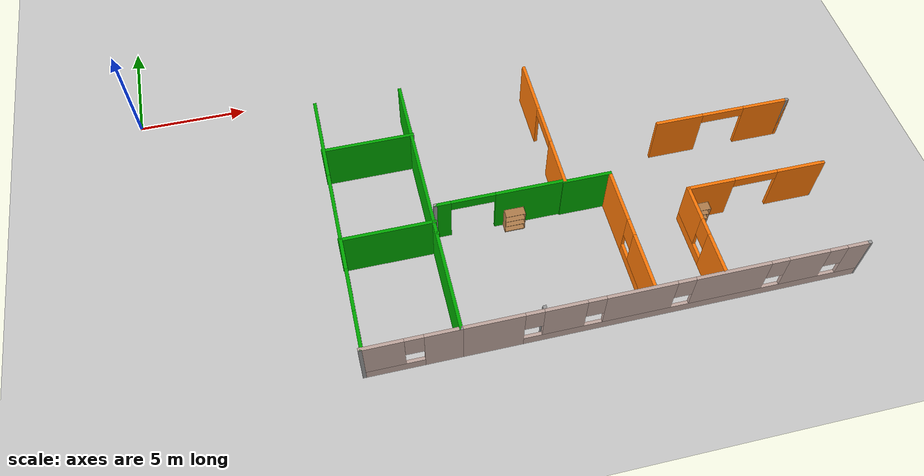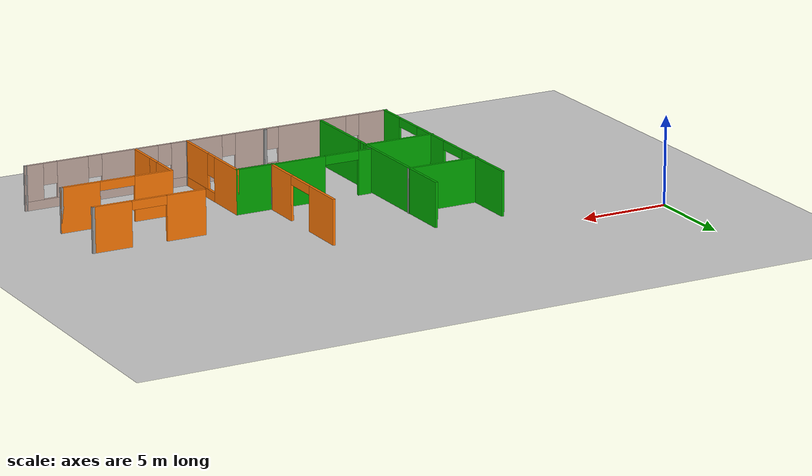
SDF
<sdf version="1.6">
 <world name="default">
  <model name="ground_plane">
   <static>1</static>
   <link name="link">
    <collision name="collision">
     <geometry><plane><normal>0 0 1</normal><size>100 100</size></plane></geometry>
     <surface><friction><ode><mu>100</mu><mu2>50</mu2></ode></friction></surface>
    </collision>
    <visual name="visual">
     <cast_shadows>0</cast_shadows>
     <geometry><plane><normal>0 0 1</normal><size>100 100</size></plane></geometry>
     <material>
      <script><uri>file://media/materials/scripts/gazebo.material</uri><name>Gazebo/Grey</name></script>
     </material>
    </visual>
   </link>
  </model>
  <model name="FloorPlan">
   <pose>0.30947 -3.19534 0 0 -0 0</pose>
   <link name="Wall_101">
    <collision name="Wall_101_Collision">
     <geometry><box><size>13 0.15 2.5</size></box></geometry>
     <pose>0 0 1.25 0 -0 0</pose>
    </collision>
    <visual name="Wall_101_Visual">
     <pose>0 0 1.25 0 -0 0</pose>
     <geometry><box><size>13 0.15 2.5</size></box></geometry>
     <material>
      <script><uri>file://media/materials/scripts/gazebo.material</uri><name>Gazebo/Grey</name></script>
      <ambient>0 0.666667 0 1</ambient>
     </material>
     <meta><layer>0</layer></meta>
    </visual>
    <pose>12.2171 -5.77826 0 0 -0 -1.5708</pose>
   </link>
   <link name="Wall_102">
    <collision name="Wall_102_Collision">
     <geometry><box><size>0.15 0.15 2.5</size></box></geometry>
     <pose>0 0 1.25 0 -0 0</pose>
    </collision>
    <visual name="Wall_102_Visual">
     <pose>0 0 1.25 0 -0 0</pose>
     <geometry><box><size>0.15 0.15 2.5</size></box></geometry>
     <material>
      <script><uri>file://media/materials/scripts/gazebo.material</uri><name>Gazebo/Grey</name></script>
      <ambient>1 1 1 1</ambient>
     </material>
     <meta><layer>0</layer></meta>
    </visual>
    <pose>12.2171 -12.2033 0 0 -0 0</pose>
   </link>
   <link name="Wall_103">
    <pose>10.1671 -12.2033 0 0 -0 3.14159</pose>
    <visual name="Wall_103_Visual_0">
     <pose>-1.32445 0 1.25 0 -0 0</pose>
     <geometry><box><size>1.60109 0.15 2.5</size></box></geometry>
     <material>
      <script><uri>file://media/materials/scripts/gazebo.material</uri><name>Gazebo/Grey</name></script>
      <ambient>0.760784 0.662745 0.627451 1</ambient>
     </material>
     <meta><layer>0</layer></meta>
    </visual>
    <collision name="Wall_103_Collision_0">
     <geometry><box><size>1.60109 0.15 2.5</size></box></geometry>
     <pose>-1.32445 0 1.25 0 -0 0</pose>
    </collision>
    <visual name="Wall_103_Visual_1">
     <pose>0.800545 0 0.25 0 -0 0</pose>
     <geometry><box><size>2.64891 0.15 0.5</size></box></geometry>
     <material>
      <script><uri>file://media/materials/scripts/gazebo.material</uri><name>Gazebo/Grey</name></script>
      <ambient>0.760784 0.662745 0.627451 1</ambient>
     </material>
     <meta><layer>0</layer></meta>
    </visual>
    <collision name="Wall_103_Collision_1">
     <geometry><box><size>2.64891 0.15 0.5</size></box></geometry>
     <pose>0.800545 0 0.25 0 -0 0</pose>
    </collision>
    <visual name="Wall_103_Visual_2">
     <pose>1.20054 0 1.5 0 -0 0</pose>
     <geometry><box><size>1.84891 0.15 2</size></box></geometry>
     <material>
      <script><uri>file://media/materials/scripts/gazebo.material</uri><name>Gazebo/Grey</name></script>
      <ambient>0.760784 0.662745 0.627451 1</ambient>
     </material>
     <meta><layer>0</layer></meta>
    </visual>
    <collision name="Wall_103_Collision_2">
     <geometry><box><size>1.84891 0.15 2</size></box></geometry>
     <pose>1.20054 0 1.5 0 -0 0</pose>
    </collision>
    <visual name="Wall_103_Visual_3">
     <pose>-0.12391 0 1.9 0 -0 0</pose>
     <geometry><box><size>0.8 0.15 1.2</size></box></geometry>
     <material>
      <script><uri>file://media/materials/scripts/gazebo.material</uri><name>Gazebo/Grey</name></script>
      <ambient>0.760784 0.662745 0.627451 1</ambient>
     </material>
     <meta><layer>0</layer></meta>
    </visual>
    <collision name="Wall_103_Collision_3">
     <geometry><box><size>0.8 0.15 1.2</size></box></geometry>
     <pose>-0.12391 0 1.9 0 -0 0</pose>
    </collision>
   </link>
   <link name="Wall_104">
    <collision name="Wall_104_Collision">
     <geometry><box><size>0.16 0.15 2.5</size></box></geometry>
     <pose>0 0 1.25 0 -0 0</pose>
    </collision>
    <visual name="Wall_104_Visual">
     <pose>0 0 1.25 0 -0 0</pose>
     <geometry><box><size>0.16 0.15 2.5</size></box></geometry>
     <material>
      <script><uri>file://media/materials/scripts/gazebo.material</uri><name>Gazebo/Grey</name></script>
      <ambient>1 1 1 1</ambient>
     </material>
     <meta><layer>0</layer></meta>
    </visual>
    <pose>8.12208 -12.2033 0 0 -0 0</pose>
   </link>
   <link name="Wall_110">
    <collision name="Wall_110_Collision">
     <geometry><box><size>0.15 0.15 2.5</size></box></geometry>
     <pose>0 0 1.25 0 -0 0</pose>
    </collision>
    <visual name="Wall_110_Visual">
     <pose>0 0 1.25 0 -0 0</pose>
     <geometry><box><size>0.15 0.15 2.5</size></box></geometry>
     <material>
      <script><uri>file://media/materials/scripts/gazebo.material</uri><name>Gazebo/Grey</name></script>
      <ambient>0 0.666667 0 1</ambient>
     </material>
     <meta><layer>0</layer></meta>
    </visual>
    <pose>12.2509 -7.59265 0 0 -0 0</pose>
   </link>
   <link name="Wall_112">
    <collision name="Wall_112_Collision">
     <geometry><box><size>4.25 0.15 2.5</size></box></geometry>
     <pose>0 0 1.25 0 -0 0</pose>
    </collision>
    <visual name="Wall_112_Visual">
     <pose>0 0 1.25 0 -0 0</pose>
     <geometry><box><size>4.25 0.15 2.5</size></box></geometry>
     <material>
      <script><uri>file://media/materials/scripts/gazebo.material</uri><name>Gazebo/Grey</name></script>
      <ambient>0 0.666667 0 1</ambient>
     </material>
     <meta><layer>0</layer></meta>
    </visual>
    <pose>10.2009 -2.13539 0 0 -0 0</pose>
   </link>
   <link name="Wall_113">
    <collision name="Wall_113_Collision">
     <geometry><box><size>0.16 0.15 2.5</size></box></geometry>
     <pose>0 0 1.25 0 -0 0</pose>
    </collision>
    <visual name="Wall_113_Visual">
     <pose>0 0 1.25 0 -0 0</pose>
     <geometry><box><size>0.16 0.15 2.5</size></box></geometry>
     <material>
      <script><uri>file://media/materials/scripts/gazebo.material</uri><name>Gazebo/Grey</name></script>
      <ambient>1 1 1 1</ambient>
     </material>
     <meta><layer>0</layer></meta>
    </visual>
    <pose>12.2559 -2.13539 0 0 -0 0</pose>
   </link>
   <link name="Wall_115">
    <collision name="Wall_115_Collision">
     <geometry><box><size>4.25 0.15 2.5</size></box></geometry>
     <pose>0 0 1.25 0 -0 0</pose>
    </collision>
    <visual name="Wall_115_Visual">
     <pose>0 0 1.25 0 -0 0</pose>
     <geometry><box><size>4.25 0.15 2.5</size></box></geometry>
     <material>
      <script><uri>file://media/materials/scripts/gazebo.material</uri><name>Gazebo/Grey</name></script>
      <ambient>0 0.666667 0 1</ambient>
     </material>
     <meta><layer>0</layer></meta>
    </visual>
    <pose>10.2009 -7.00412 0 0 -0 0</pose>
   </link>
   <link name="Wall_116">
    <collision name="Wall_116_Collision">
     <geometry><box><size>0.16 0.15 2.5</size></box></geometry>
     <pose>0 0 1.25 0 -0 0</pose>
    </collision>
    <visual name="Wall_116_Visual">
     <pose>0 0 1.25 0 -0 0</pose>
     <geometry><box><size>0.16 0.15 2.5</size></box></geometry>
     <material>
      <script><uri>file://media/materials/scripts/gazebo.material</uri><name>Gazebo/Grey</name></script>
      <ambient>1 1 1 1</ambient>
     </material>
     <meta><layer>0</layer></meta>
    </visual>
    <pose>12.2559 -7.00412 0 0 -0 0</pose>
   </link>
   <link name="Wall_117">
    <collision name="Wall_117_Collision">
     <geometry><box><size>0.16 0.15 2.5</size></box></geometry>
     <pose>0 0 1.25 0 -0 0</pose>
    </collision>
    <visual name="Wall_117_Visual">
     <pose>0 0 1.25 0 -0 0</pose>
     <geometry><box><size>0.16 0.15 2.5</size></box></geometry>
     <material>
      <script><uri>file://media/materials/scripts/gazebo.material</uri><name>Gazebo/Grey</name></script>
      <ambient>0 0.666667 0 1</ambient>
     </material>
     <meta><layer>0</layer></meta>
    </visual>
    <pose>12.2659 -7.00412 0 0 -0 0</pose>
   </link>
   <link name="Wall_135">
    <pose>26.5741 -4.06509 0 0 -0 0</pose>
    <visual name="Wall_135_Visual_0">
     <pose>-2.12495 0 1.25 0 -0 0</pose>
     <geometry><box><size>2.25011 0.15 2.5</size></box></geometry>
     <material>
      <script><uri>file://media/materials/scripts/gazebo.material</uri><name>Gazebo/Grey</name></script>
      <ambient>0.996078 0.47451 0.0196078 1</ambient>
     </material>
     <meta><layer>0</layer></meta>
    </visual>
    <collision name="Wall_135_Collision_0">
     <geometry><box><size>2.25011 0.15 2.5</size></box></geometry>
     <pose>-2.12495 0 1.25 0 -0 0</pose>
    </collision>
    <visual name="Wall_135_Visual_1">
     <pose>2.12505 0 1.25 0 -0 0</pose>
     <geometry><box><size>2.24989 0.15 2.5</size></box></geometry>
     <material>
      <script><uri>file://media/materials/scripts/gazebo.material</uri><name>Gazebo/Grey</name></script>
      <ambient>0.996078 0.47451 0.0196078 1</ambient>
     </material>
     <meta><layer>0</layer></meta>
    </visual>
    <collision name="Wall_135_Collision_1">
     <geometry><box><size>2.24989 0.15 2.5</size></box></geometry>
     <pose>2.12505 0 1.25 0 -0 0</pose>
    </collision>
    <visual name="Wall_135_Visual_2">
     <pose>0.000105 0 2.25 0 -0 0</pose>
     <geometry><box><size>2 0.15 0.5</size></box></geometry>
     <material>
      <script><uri>file://media/materials/scripts/gazebo.material</uri><name>Gazebo/Grey</name></script>
      <ambient>0.996078 0.47451 0.0196078 1</ambient>
     </material>
     <meta><layer>0</layer></meta>
    </visual>
    <collision name="Wall_135_Collision_2">
     <geometry><box><size>2 0.15 0.5</size></box></geometry>
     <pose>0.000105 0 2.25 0 -0 0</pose>
    </collision>
   </link>
   <link name="Wall_136">
    <collision name="Wall_136_Collision">
     <geometry><box><size>0.16 0.15 2.5</size></box></geometry>
     <pose>0 0 1.25 0 -0 0</pose>
    </collision>
    <visual name="Wall_136_Visual">
     <pose>0 0 1.25 0 -0 0</pose>
     <geometry><box><size>0.16 0.15 2.5</size></box></geometry>
     <material>
      <script><uri>file://media/materials/scripts/gazebo.material</uri><name>Gazebo/Grey</name></script>
      <ambient>1 1 1 1</ambient>
     </material>
     <meta><layer>0</layer></meta>
    </visual>
    <pose>29.7541 -4.06509 0 0 -0 0</pose>
   </link>
   <link name="Wall_141">
    <pose>23.4526 -10.0189 0 0 -0 1.5708</pose>
    <visual name="Wall_141_Visual_0">
     <pose>-1.2622 0 1.25 0 -0 0</pose>
     <geometry><box><size>1.97561 0.15 2.5</size></box></geometry>
     <material>
      <script><uri>file://media/materials/scripts/gazebo.material</uri><name>Gazebo/Grey</name></script>
      <ambient>0.996078 0.47451 0.0196078 1</ambient>
     </material>
     <meta><layer>0</layer></meta>
    </visual>
    <collision name="Wall_141_Collision_0">
     <geometry><box><size>1.97561 0.15 2.5</size></box></geometry>
     <pose>-1.2622 0 1.25 0 -0 0</pose>
    </collision>
    <visual name="Wall_141_Visual_1">
     <pose>0.987804 0 0.25 0 -0 0</pose>
     <geometry><box><size>2.52439 0.15 0.5</size></box></geometry>
     <material>
      <script><uri>file://media/materials/scripts/gazebo.material</uri><name>Gazebo/Grey</name></script>
      <ambient>0.996078 0.47451 0.0196078 1</ambient>
     </material>
     <meta><layer>0</layer></meta>
    </visual>
    <collision name="Wall_141_Collision_1">
     <geometry><box><size>2.52439 0.15 0.5</size></box></geometry>
     <pose>0.987804 0 0.25 0 -0 0</pose>
    </collision>
    <visual name="Wall_141_Visual_2">
     <pose>1.3878 0 1.5 0 -0 0</pose>
     <geometry><box><size>1.72439 0.15 2</size></box></geometry>
     <material>
      <script><uri>file://media/materials/scripts/gazebo.material</uri><name>Gazebo/Grey</name></script>
      <ambient>0.996078 0.47451 0.0196078 1</ambient>
     </material>
     <meta><layer>0</layer></meta>
    </visual>
    <collision name="Wall_141_Collision_2">
     <geometry><box><size>1.72439 0.15 2</size></box></geometry>
     <pose>1.3878 0 1.5 0 -0 0</pose>
    </collision>
    <visual name="Wall_141_Visual_3">
     <pose>0.125608 0 1.9 0 -0 0</pose>
     <geometry><box><size>0.8 0.15 1.2</size></box></geometry>
     <material>
      <script><uri>file://media/materials/scripts/gazebo.material</uri><name>Gazebo/Grey</name></script>
      <ambient>0.996078 0.47451 0.0196078 1</ambient>
     </material>
     <meta><layer>0</layer></meta>
    </visual>
    <collision name="Wall_141_Collision_3">
     <geometry><box><size>0.8 0.15 1.2</size></box></geometry>
     <pose>0.125608 0 1.9 0 -0 0</pose>
    </collision>
   </link>
   <link name="Wall_142">
    <pose>26.6276 -7.84386 0 0 -0 0</pose>
    <visual name="Wall_142_Visual_0">
     <pose>-2.13418 0 1.25 0 -0 0</pose>
     <geometry><box><size>2.23165 0.15 2.5</size></box></geometry>
     <material>
      <script><uri>file://media/materials/scripts/gazebo.material</uri><name>Gazebo/Grey</name></script>
      <ambient>0.996078 0.47451 0.0196078 1</ambient>
     </material>
     <meta><layer>0</layer></meta>
    </visual>
    <collision name="Wall_142_Collision_0">
     <geometry><box><size>2.23165 0.15 2.5</size></box></geometry>
     <pose>-2.13418 0 1.25 0 -0 0</pose>
    </collision>
    <visual name="Wall_142_Visual_1">
     <pose>2.11582 0 1.25 0 -0 0</pose>
     <geometry><box><size>2.26835 0.15 2.5</size></box></geometry>
     <material>
      <script><uri>file://media/materials/scripts/gazebo.material</uri><name>Gazebo/Grey</name></script>
      <ambient>0.996078 0.47451 0.0196078 1</ambient>
     </material>
     <meta><layer>0</layer></meta>
    </visual>
    <collision name="Wall_142_Collision_1">
     <geometry><box><size>2.26835 0.15 2.5</size></box></geometry>
     <pose>2.11582 0 1.25 0 -0 0</pose>
    </collision>
    <visual name="Wall_142_Visual_2">
     <pose>-0.018353 0 2.25 0 -0 0</pose>
     <geometry><box><size>2 0.15 0.5</size></box></geometry>
     <material>
      <script><uri>file://media/materials/scripts/gazebo.material</uri><name>Gazebo/Grey</name></script>
      <ambient>0.996078 0.47451 0.0196078 1</ambient>
     </material>
     <meta><layer>0</layer></meta>
    </visual>
    <collision name="Wall_142_Collision_2">
     <geometry><box><size>2 0.15 0.5</size></box></geometry>
     <pose>-0.018353 0 2.25 0 -0 0</pose>
    </collision>
   </link>
   <link name="Wall_143">
    <collision name="Wall_143_Collision">
     <geometry><box><size>0.15 0.15 2.5</size></box></geometry>
     <pose>0 0 1.25 0 -0 0</pose>
    </collision>
    <visual name="Wall_143_Visual">
     <pose>0 0 1.25 0 -0 0</pose>
     <geometry><box><size>0.15 0.15 2.5</size></box></geometry>
     <material>
      <script><uri>file://media/materials/scripts/gazebo.material</uri><name>Gazebo/Grey</name></script>
      <ambient>1 1 1 1</ambient>
     </material>
     <meta><layer>0</layer></meta>
    </visual>
    <pose>29.8026 -7.84386 0 0 -0 0</pose>
   </link>
   <link name="Wall_148">
    <collision name="Wall_148_Collision">
     <geometry><box><size>2.25 0.15 2.5</size></box></geometry>
     <pose>0 0 1.25 0 -0 0</pose>
    </collision>
    <visual name="Wall_148_Visual">
     <pose>0 0 1.25 0 -0 0</pose>
     <geometry><box><size>2.25 0.15 2.5</size></box></geometry>
     <material>
      <script><uri>file://media/materials/scripts/gazebo.material</uri><name>Gazebo/Grey</name></script>
      <ambient>0 0.666667 0 1</ambient>
     </material>
     <meta><layer>0</layer></meta>
    </visual>
    <pose>19.3129 -6.25509 0 0 -0 0</pose>
   </link>
   <link name="Wall_149">
    <pose>20.3629 -9.18009 0 0 -0 -1.5708</pose>
    <visual name="Wall_149_Visual_0">
     <pose>-1.69118 0 1.25 0 -0 0</pose>
     <geometry><box><size>2.61764 0.15 2.5</size></box></geometry>
     <material>
      <script><uri>file://media/materials/scripts/gazebo.material</uri><name>Gazebo/Grey</name></script>
      <ambient>0.996078 0.47451 0.0196078 1</ambient>
     </material>
     <meta><layer>0</layer></meta>
    </visual>
    <collision name="Wall_149_Collision_0">
     <geometry><box><size>2.61764 0.15 2.5</size></box></geometry>
     <pose>-1.69118 0 1.25 0 -0 0</pose>
    </collision>
    <visual name="Wall_149_Visual_1">
     <pose>1.30882 0 0.25 0 -0 0</pose>
     <geometry><box><size>3.38236 0.15 0.5</size></box></geometry>
     <material>
      <script><uri>file://media/materials/scripts/gazebo.material</uri><name>Gazebo/Grey</name></script>
      <ambient>0.996078 0.47451 0.0196078 1</ambient>
     </material>
     <meta><layer>0</layer></meta>
    </visual>
    <collision name="Wall_149_Collision_1">
     <geometry><box><size>3.38236 0.15 0.5</size></box></geometry>
     <pose>1.30882 0 0.25 0 -0 0</pose>
    </collision>
    <visual name="Wall_149_Visual_2">
     <pose>1.70882 0 1.5 0 -0 0</pose>
     <geometry><box><size>2.58236 0.15 2</size></box></geometry>
     <material>
      <script><uri>file://media/materials/scripts/gazebo.material</uri><name>Gazebo/Grey</name></script>
      <ambient>0.996078 0.47451 0.0196078 1</ambient>
     </material>
     <meta><layer>0</layer></meta>
    </visual>
    <collision name="Wall_149_Collision_2">
     <geometry><box><size>2.58236 0.15 2</size></box></geometry>
     <pose>1.70882 0 1.5 0 -0 0</pose>
    </collision>
    <visual name="Wall_149_Visual_3">
     <pose>0.017638 0 1.9 0 -0 0</pose>
     <geometry><box><size>0.8 0.15 1.2</size></box></geometry>
     <material>
      <script><uri>file://media/materials/scripts/gazebo.material</uri><name>Gazebo/Grey</name></script>
      <ambient>0.996078 0.47451 0.0196078 1</ambient>
     </material>
     <meta><layer>0</layer></meta>
    </visual>
    <collision name="Wall_149_Collision_3">
     <geometry><box><size>0.8 0.15 1.2</size></box></geometry>
     <pose>0.017638 0 1.9 0 -0 0</pose>
    </collision>
   </link>
   <link name="Wall_150">
    <collision name="Wall_150_Collision">
     <geometry><box><size>0.16 0.15 2.5</size></box></geometry>
     <pose>0 0 1.25 0 -0 0</pose>
    </collision>
    <visual name="Wall_150_Visual">
     <pose>0 0 1.25 0 -0 0</pose>
     <geometry><box><size>0.16 0.15 2.5</size></box></geometry>
     <material>
      <script><uri>file://media/materials/scripts/gazebo.material</uri><name>Gazebo/Grey</name></script>
      <ambient>1 1 1 1</ambient>
     </material>
     <meta><layer>0</layer></meta>
    </visual>
    <pose>20.3679 -12.1051 0 0 -0 0</pose>
   </link>
   <link name="Wall_181">
    <pose>18.2926 -2.77522 0 0 -0 -1.5708</pose>
    <visual name="Wall_181_Visual_0">
     <pose>-2.16865 0 1.25 0 -0 0</pose>
     <geometry><box><size>2.6627 0.15 2.5</size></box></geometry>
     <material>
      <script><uri>file://media/materials/scripts/gazebo.material</uri><name>Gazebo/Grey</name></script>
      <ambient>0.996078 0.47451 0.0196078 1</ambient>
     </material>
     <meta><layer>0</layer></meta>
    </visual>
    <collision name="Wall_181_Collision_0">
     <geometry><box><size>2.6627 0.15 2.5</size></box></geometry>
     <pose>-2.16865 0 1.25 0 -0 0</pose>
    </collision>
    <visual name="Wall_181_Visual_1">
     <pose>2.33135 0 1.25 0 -0 0</pose>
     <geometry><box><size>2.3373 0.15 2.5</size></box></geometry>
     <material>
      <script><uri>file://media/materials/scripts/gazebo.material</uri><name>Gazebo/Grey</name></script>
      <ambient>0.996078 0.47451 0.0196078 1</ambient>
     </material>
     <meta><layer>0</layer></meta>
    </visual>
    <collision name="Wall_181_Collision_1">
     <geometry><box><size>2.3373 0.15 2.5</size></box></geometry>
     <pose>2.33135 0 1.25 0 -0 0</pose>
    </collision>
    <visual name="Wall_181_Visual_2">
     <pose>0.162705 0 2.25 0 -0 0</pose>
     <geometry><box><size>2 0.15 0.5</size></box></geometry>
     <material>
      <script><uri>file://media/materials/scripts/gazebo.material</uri><name>Gazebo/Grey</name></script>
      <ambient>0.996078 0.47451 0.0196078 1</ambient>
     </material>
     <meta><layer>0</layer></meta>
    </visual>
    <collision name="Wall_181_Collision_2">
     <geometry><box><size>2 0.15 0.5</size></box></geometry>
     <pose>0.162705 0 2.25 0 -0 0</pose>
    </collision>
   </link>
   <link name="Wall_182">
    <collision name="Wall_182_Collision">
     <geometry><box><size>0.16 0.15 2.5</size></box></geometry>
     <pose>0 0 1.25 0 -0 0</pose>
    </collision>
    <visual name="Wall_182_Visual">
     <pose>0 0 1.25 0 -0 0</pose>
     <geometry><box><size>0.16 0.15 2.5</size></box></geometry>
     <material>
      <script><uri>file://media/materials/scripts/gazebo.material</uri><name>Gazebo/Grey</name></script>
      <ambient>1 1 1 1</ambient>
     </material>
     <meta><layer>0</layer></meta>
    </visual>
    <pose>18.2976 -6.20023 0 0 -0 0</pose>
   </link>
   <link name="Wall_187">
    <collision name="Wall_187_Collision">
     <geometry><box><size>0.16 0.15 2.5</size></box></geometry>
     <pose>0 0 1.25 0 -0 0</pose>
    </collision>
    <visual name="Wall_187_Visual">
     <pose>0 0 1.25 0 -0 0</pose>
     <geometry><box><size>0.16 0.15 2.5</size></box></geometry>
     <material>
      <script><uri>file://media/materials/scripts/gazebo.material</uri><name>Gazebo/Grey</name></script>
      <ambient>1 1 1 1</ambient>
     </material>
     <meta><layer>0</layer></meta>
    </visual>
    <pose>15.7076 -12.0502 0 0 -0 0</pose>
   </link>
   <link name="Wall_191">
    <pose>21.0546 -12.2016 0 0 -0 0.00019</pose>
    <visual name="Wall_191_Visual_0">
     <pose>-7.55039 0 1.25 0 -0 0</pose>
     <geometry><box><size>2.72478 0.15 2.5</size></box></geometry>
     <material>
      <script><uri>file://media/materials/scripts/gazebo.material</uri><name>Gazebo/Grey</name></script>
      <ambient>0.760784 0.662745 0.627451 1</ambient>
     </material>
     <meta><layer>0</layer></meta>
    </visual>
    <collision name="Wall_191_Collision_0">
     <geometry><box><size>2.72478 0.15 2.5</size></box></geometry>
     <pose>-7.55039 0 1.25 0 -0 0</pose>
    </collision>
    <visual name="Wall_191_Visual_1">
     <pose>1.36239 0 0.25 0 -0 0</pose>
     <geometry><box><size>15.1008 0.15 0.5</size></box></geometry>
     <material>
      <script><uri>file://media/materials/scripts/gazebo.material</uri><name>Gazebo/Grey</name></script>
      <ambient>0.760784 0.662745 0.627451 1</ambient>
     </material>
     <meta><layer>0</layer></meta>
    </visual>
    <collision name="Wall_191_Collision_1">
     <geometry><box><size>15.1008 0.15 0.5</size></box></geometry>
     <pose>1.36239 0 0.25 0 -0 0</pose>
    </collision>
    <visual name="Wall_191_Visual_2">
     <pose>-4.4772 0 1.5 0 -0 0</pose>
     <geometry><box><size>1.82158 0.15 2</size></box></geometry>
     <material>
      <script><uri>file://media/materials/scripts/gazebo.material</uri><name>Gazebo/Grey</name></script>
      <ambient>0.760784 0.662745 0.627451 1</ambient>
     </material>
     <meta><layer>0</layer></meta>
    </visual>
    <collision name="Wall_191_Collision_2">
     <geometry><box><size>1.82158 0.15 2</size></box></geometry>
     <pose>-4.4772 0 1.5 0 -0 0</pose>
    </collision>
    <visual name="Wall_191_Visual_3">
     <pose>-1.24038 0 1.5 0 -0 0</pose>
     <geometry><box><size>3.05207 0.15 2</size></box></geometry>
     <material>
      <script><uri>file://media/materials/scripts/gazebo.material</uri><name>Gazebo/Grey</name></script>
      <ambient>0.760784 0.662745 0.627451 1</ambient>
     </material>
     <meta><layer>0</layer></meta>
    </visual>
    <collision name="Wall_191_Collision_3">
     <geometry><box><size>3.05207 0.15 2</size></box></geometry>
     <pose>-1.24038 0 1.5 0 -0 0</pose>
    </collision>
    <visual name="Wall_191_Visual_4">
     <pose>2.74544 0 1.5 0 -0 0</pose>
     <geometry><box><size>3.31959 0.15 2</size></box></geometry>
     <material>
      <script><uri>file://media/materials/scripts/gazebo.material</uri><name>Gazebo/Grey</name></script>
      <ambient>0.760784 0.662745 0.627451 1</ambient>
     </material>
     <meta><layer>0</layer></meta>
    </visual>
    <collision name="Wall_191_Collision_4">
     <geometry><box><size>3.31959 0.15 2</size></box></geometry>
     <pose>2.74544 0 1.5 0 -0 0</pose>
    </collision>
    <visual name="Wall_191_Visual_5">
     <pose>6.116 0 1.5 0 -0 0</pose>
     <geometry><box><size>1.82153 0.15 2</size></box></geometry>
     <material>
      <script><uri>file://media/materials/scripts/gazebo.material</uri><name>Gazebo/Grey</name></script>
      <ambient>0.760784 0.662745 0.627451 1</ambient>
     </material>
     <meta><layer>0</layer></meta>
    </visual>
    <collision name="Wall_191_Collision_5">
     <geometry><box><size>1.82153 0.15 2</size></box></geometry>
     <pose>6.116 0 1.5 0 -0 0</pose>
    </collision>
    <visual name="Wall_191_Visual_6">
     <pose>8.36977 0 1.5 0 -0 0</pose>
     <geometry><box><size>1.08601 0.15 2</size></box></geometry>
     <material>
      <script><uri>file://media/materials/scripts/gazebo.material</uri><name>Gazebo/Grey</name></script>
      <ambient>0.760784 0.662745 0.627451 1</ambient>
     </material>
     <meta><layer>0</layer></meta>
    </visual>
    <collision name="Wall_191_Collision_6">
     <geometry><box><size>1.08601 0.15 2</size></box></geometry>
     <pose>8.36977 0 1.5 0 -0 0</pose>
    </collision>
    <visual name="Wall_191_Visual_7">
     <pose>-5.78799 0 1.9 0 -0 0</pose>
     <geometry><box><size>0.8 0.15 1.2</size></box></geometry>
     <material>
      <script><uri>file://media/materials/scripts/gazebo.material</uri><name>Gazebo/Grey</name></script>
      <ambient>0.760784 0.662745 0.627451 1</ambient>
     </material>
     <meta><layer>0</layer></meta>
    </visual>
    <collision name="Wall_191_Collision_7">
     <geometry><box><size>0.8 0.15 1.2</size></box></geometry>
     <pose>-5.78799 0 1.9 0 -0 0</pose>
    </collision>
    <visual name="Wall_191_Visual_8">
     <pose>-3.16642 0 1.9 0 -0 0</pose>
     <geometry><box><size>0.8 0.15 1.2</size></box></geometry>
     <material>
      <script><uri>file://media/materials/scripts/gazebo.material</uri><name>Gazebo/Grey</name></script>
      <ambient>0.760784 0.662745 0.627451 1</ambient>
     </material>
     <meta><layer>0</layer></meta>
    </visual>
    <collision name="Wall_191_Collision_8">
     <geometry><box><size>0.8 0.15 1.2</size></box></geometry>
     <pose>-3.16642 0 1.9 0 -0 0</pose>
    </collision>
    <visual name="Wall_191_Visual_9">
     <pose>0.685652 0 1.9 0 -0 0</pose>
     <geometry><box><size>0.8 0.15 1.2</size></box></geometry>
     <material>
      <script><uri>file://media/materials/scripts/gazebo.material</uri><name>Gazebo/Grey</name></script>
      <ambient>0.760784 0.662745 0.627451 1</ambient>
     </material>
     <meta><layer>0</layer></meta>
    </visual>
    <collision name="Wall_191_Collision_9">
     <geometry><box><size>0.8 0.15 1.2</size></box></geometry>
     <pose>0.685652 0 1.9 0 -0 0</pose>
    </collision>
    <visual name="Wall_191_Visual_10">
     <pose>4.80524 0 1.9 0 -0 0</pose>
     <geometry><box><size>0.8 0.15 1.2</size></box></geometry>
     <material>
      <script><uri>file://media/materials/scripts/gazebo.material</uri><name>Gazebo/Grey</name></script>
      <ambient>0.760784 0.662745 0.627451 1</ambient>
     </material>
     <meta><layer>0</layer></meta>
    </visual>
    <collision name="Wall_191_Collision_10">
     <geometry><box><size>0.8 0.15 1.2</size></box></geometry>
     <pose>4.80524 0 1.9 0 -0 0</pose>
    </collision>
    <visual name="Wall_191_Visual_11">
     <pose>7.42677 0 1.9 0 -0 0</pose>
     <geometry><box><size>0.8 0.15 1.2</size></box></geometry>
     <material>
      <script><uri>file://media/materials/scripts/gazebo.material</uri><name>Gazebo/Grey</name></script>
      <ambient>0.760784 0.662745 0.627451 1</ambient>
     </material>
     <meta><layer>0</layer></meta>
    </visual>
    <collision name="Wall_191_Collision_11">
     <geometry><box><size>0.8 0.15 1.2</size></box></geometry>
     <pose>7.42677 0 1.9 0 -0 0</pose>
    </collision>
   </link>
   <link name="Wall_192">
    <collision name="Wall_192_Collision">
     <geometry><box><size>0.16 0.15 2.5</size></box></geometry>
     <pose>0 0 1.25 0 -0 0</pose>
    </collision>
    <visual name="Wall_192_Visual">
     <pose>0 0 1.25 0 -0 0</pose>
     <geometry><box><size>0.16 0.15 2.5</size></box></geometry>
     <material>
      <script><uri>file://media/materials/scripts/gazebo.material</uri><name>Gazebo/Grey</name></script>
      <ambient>1 1 1 1</ambient>
     </material>
     <meta><layer>0</layer></meta>
    </visual>
    <pose>29.8974 -12.2001 0 0 -0 -0.03128</pose>
   </link>
   <link name="Wall_194">
    <pose>15.3676 -6.20022 0 0 -0 3.14159</pose>
    <visual name="Wall_194_Visual_0">
     <pose>-1.38777 0 1.25 0 -0 0</pose>
     <geometry><box><size>3.22446 0.15 2.5</size></box></geometry>
     <material>
      <script><uri>file://media/materials/scripts/gazebo.material</uri><name>Gazebo/Grey</name></script>
      <ambient>0 0.666667 0 1</ambient>
     </material>
     <meta><layer>0</layer></meta>
    </visual>
    <collision name="Wall_194_Collision_0">
     <geometry><box><size>3.22446 0.15 2.5</size></box></geometry>
     <pose>-1.38777 0 1.25 0 -0 0</pose>
    </collision>
    <visual name="Wall_194_Visual_1">
     <pose>2.61223 0 1.25 0 -0 0</pose>
     <geometry><box><size>0.775536 0.15 2.5</size></box></geometry>
     <material>
      <script><uri>file://media/materials/scripts/gazebo.material</uri><name>Gazebo/Grey</name></script>
      <ambient>0 0.666667 0 1</ambient>
     </material>
     <meta><layer>0</layer></meta>
    </visual>
    <collision name="Wall_194_Collision_1">
     <geometry><box><size>0.775536 0.15 2.5</size></box></geometry>
     <pose>2.61223 0 1.25 0 -0 0</pose>
    </collision>
    <visual name="Wall_194_Visual_2">
     <pose>1.22446 0 2.25 0 -0 0</pose>
     <geometry><box><size>2 0.15 0.5</size></box></geometry>
     <material>
      <script><uri>file://media/materials/scripts/gazebo.material</uri><name>Gazebo/Grey</name></script>
      <ambient>0 0.666667 0 1</ambient>
     </material>
     <meta><layer>0</layer></meta>
    </visual>
    <collision name="Wall_194_Collision_2">
     <geometry><box><size>2 0.15 0.5</size></box></geometry>
     <pose>1.22446 0 2.25 0 -0 0</pose>
    </collision>
   </link>
   <link name="Wall_195">
    <collision name="Wall_195_Collision">
     <geometry><box><size>0.16 0.15 2.5</size></box></geometry>
     <pose>0 0 1.25 0 -0 0</pose>
    </collision>
    <visual name="Wall_195_Visual">
     <pose>0 0 1.25 0 -0 0</pose>
     <geometry><box><size>0.16 0.15 2.5</size></box></geometry>
     <material>
      <script><uri>file://media/materials/scripts/gazebo.material</uri><name>Gazebo/Grey</name></script>
      <ambient>1 1 1 1</ambient>
     </material>
     <meta><layer>0</layer></meta>
    </visual>
    <pose>12.4476 -6.20023 0 0 -0 0</pose>
   </link>
   <link name="Wall_5">
    <pose>8.19263 -5.77523 0 0 -0 -1.5708</pose>
    <visual name="Wall_5_Visual_0">
     <pose>-4.36611 0 1.25 0 -0 0</pose>
     <geometry><box><size>4.26778 0.15 2.5</size></box></geometry>
     <material>
      <script><uri>file://media/materials/scripts/gazebo.material</uri><name>Gazebo/Grey</name></script>
      <ambient>0 0.666667 0 1</ambient>
     </material>
     <meta><layer>0</layer></meta>
    </visual>
    <collision name="Wall_5_Collision_0">
     <geometry><box><size>4.26778 0.15 2.5</size></box></geometry>
     <pose>-4.36611 0 1.25 0 -0 0</pose>
    </collision>
    <visual name="Wall_5_Visual_1">
     <pose>1.2289 0 1.25 0 -0 0</pose>
     <geometry><box><size>2.92223 0.15 2.5</size></box></geometry>
     <material>
      <script><uri>file://media/materials/scripts/gazebo.material</uri><name>Gazebo/Grey</name></script>
      <ambient>0 0.666667 0 1</ambient>
     </material>
     <meta><layer>0</layer></meta>
    </visual>
    <collision name="Wall_5_Collision_1">
     <geometry><box><size>2.92223 0.15 2.5</size></box></geometry>
     <pose>1.2289 0 1.25 0 -0 0</pose>
    </collision>
    <visual name="Wall_5_Visual_2">
     <pose>5.595 0 1.25 0 -0 0</pose>
     <geometry><box><size>1.80999 0.15 2.5</size></box></geometry>
     <material>
      <script><uri>file://media/materials/scripts/gazebo.material</uri><name>Gazebo/Grey</name></script>
      <ambient>0 0.666667 0 1</ambient>
     </material>
     <meta><layer>0</layer></meta>
    </visual>
    <collision name="Wall_5_Collision_2">
     <geometry><box><size>1.80999 0.15 2.5</size></box></geometry>
     <pose>5.595 0 1.25 0 -0 0</pose>
    </collision>
    <visual name="Wall_5_Visual_3">
     <pose>-1.23222 0 2.25 0 -0 0</pose>
     <geometry><box><size>2 0.15 0.5</size></box></geometry>
     <material>
      <script><uri>file://media/materials/scripts/gazebo.material</uri><name>Gazebo/Grey</name></script>
      <ambient>0 0.666667 0 1</ambient>
     </material>
     <meta><layer>0</layer></meta>
    </visual>
    <collision name="Wall_5_Collision_3">
     <geometry><box><size>2 0.15 0.5</size></box></geometry>
     <pose>-1.23222 0 2.25 0 -0 0</pose>
    </collision>
    <visual name="Wall_5_Visual_4">
     <pose>3.69001 0 2.25 0 -0 0</pose>
     <geometry><box><size>2 0.15 0.5</size></box></geometry>
     <material>
      <script><uri>file://media/materials/scripts/gazebo.material</uri><name>Gazebo/Grey</name></script>
      <ambient>0 0.666667 0 1</ambient>
     </material>
     <meta><layer>0</layer></meta>
    </visual>
    <collision name="Wall_5_Collision_4">
     <geometry><box><size>2 0.15 0.5</size></box></geometry>
     <pose>3.69001 0 2.25 0 -0 0</pose>
    </collision>
   </link>
   <static>1</static>
  </model>
  <model name="bookshelf_0">
   <static>1</static>
   <link name="link">
    <inertial><mass>1</mass></inertial>
    <collision name="back">
     <pose>0 0.005 0.6 0 -0 0</pose>
     <geometry><box><size>0.9 0.01 1.2</size></box></geometry>
    </collision>
    <visual name="visual1">
     <pose>0 0.005 0.6 0 -0 0</pose>
     <geometry><box><size>0.9 0.01 1.2</size></box></geometry>
     <material>
      <script><uri>file://media/materials/scripts/gazebo.material</uri><name>Gazebo/Wood</name></script>
     </material>
    </visual>
    <collision name="left_side">
     <pose>0.45 -0.195 0.6 0 -0 0</pose>
     <geometry><box><size>0.02 0.4 1.2</size></box></geometry>
    </collision>
    <visual name="visual2">
     <pose>0.45 -0.195 0.6 0 -0 0</pose>
     <geometry><box><size>0.02 0.4 1.2</size></box></geometry>
     <material>
      <script><uri>file://media/materials/scripts/gazebo.material</uri><name>Gazebo/Wood</name></script>
     </material>
    </visual>
    <collision name="right_side">
     <pose>-0.45 -0.195 0.6 0 -0 0</pose>
     <geometry><box><size>0.02 0.4 1.2</size></box></geometry>
    </collision>
    <visual name="visual3">
     <pose>-0.45 -0.195 0.6 0 -0 0</pose>
     <geometry><box><size>0.02 0.4 1.2</size></box></geometry>
     <material>
      <script><uri>file://media/materials/scripts/gazebo.material</uri><name>Gazebo/Wood</name></script>
     </material>
    </visual>
    <collision name="bottom">
     <pose>0 -0.195 0.03 0 -0 0</pose>
     <geometry><box><size>0.88 0.4 0.06</size></box></geometry>
    </collision>
    <visual name="visual4">
     <pose>0 -0.195 0.03 0 -0 0</pose>
     <geometry><box><size>0.88 0.4 0.06</size></box></geometry>
     <material>
      <script><uri>file://media/materials/scripts/gazebo.material</uri><name>Gazebo/Wood</name></script>
     </material>
    </visual>
    <collision name="top">
     <pose>0 -0.195 1.19 0 -0 0</pose>
     <geometry><box><size>0.88 0.4 0.02</size></box></geometry>
    </collision>
    <visual name="visual5">
     <pose>0 -0.195 1.19 0 -0 0</pose>
     <geometry><box><size>0.88 0.4 0.02</size></box></geometry>
     <material>
      <script><uri>file://media/materials/scripts/gazebo.material</uri><name>Gazebo/Wood</name></script>
     </material>
    </visual>
    <collision name="low_shelf">
     <pose>0 -0.195 0.43 0 -0 0</pose>
     <geometry><box><size>0.88 0.4 0.02</size></box></geometry>
    </collision>
    <visual name="visual6">
     <pose>0 -0.195 0.43 0 -0 0</pose>
     <geometry><box><size>0.88 0.4 0.02</size></box></geometry>
     <material>
      <script><uri>file://media/materials/scripts/gazebo.material</uri><name>Gazebo/Wood</name></script>
     </material>
    </visual>
    <collision name="high_shelf">
     <pose>0 -0.195 0.8 0 -0 0</pose>
     <geometry><box><size>0.88 0.4 0.02</size></box></geometry>
    </collision>
    <visual name="visual7">
     <pose>0 -0.195 0.8 0 -0 0</pose>
     <geometry><box><size>0.88 0.4 0.02</size></box></geometry>
     <material>
      <script><uri>file://media/materials/scripts/gazebo.material</uri><name>Gazebo/Wood</name></script>
     </material>
    </visual>
   </link>
   <pose>16.3058 -9.49449 0 0 -0 0</pose>
  </model>
  <model name="bookshelf_1">
   <static>1</static>
   <link name="link">
    <inertial><mass>1</mass></inertial>
    <collision name="back">
     <pose>0 0.005 0.6 0 -0 0</pose>
     <geometry><box><size>0.9 0.01 1.2</size></box></geometry>
    </collision>
    <visual name="visual1">
     <pose>0 0.005 0.6 0 -0 0</pose>
     <geometry><box><size>0.9 0.01 1.2</size></box></geometry>
     <material>
      <script><uri>file://media/materials/scripts/gazebo.material</uri><name>Gazebo/Wood</name></script>
     </material>
    </visual>
    <collision name="left_side">
     <pose>0.45 -0.195 0.6 0 -0 0</pose>
     <geometry><box><size>0.02 0.4 1.2</size></box></geometry>
    </collision>
    <visual name="visual2">
     <pose>0.45 -0.195 0.6 0 -0 0</pose>
     <geometry><box><size>0.02 0.4 1.2</size></box></geometry>
     <material>
      <script><uri>file://media/materials/scripts/gazebo.material</uri><name>Gazebo/Wood</name></script>
     </material>
    </visual>
    <collision name="right_side">
     <pose>-0.45 -0.195 0.6 0 -0 0</pose>
     <geometry><box><size>0.02 0.4 1.2</size></box></geometry>
    </collision>
    <visual name="visual3">
     <pose>-0.45 -0.195 0.6 0 -0 0</pose>
     <geometry><box><size>0.02 0.4 1.2</size></box></geometry>
     <material>
      <script><uri>file://media/materials/scripts/gazebo.material</uri><name>Gazebo/Wood</name></script>
     </material>
    </visual>
    <collision name="bottom">
     <pose>0 -0.195 0.03 0 -0 0</pose>
     <geometry><box><size>0.88 0.4 0.06</size></box></geometry>
    </collision>
    <visual name="visual4">
     <pose>0 -0.195 0.03 0 -0 0</pose>
     <geometry><box><size>0.88 0.4 0.06</size></box></geometry>
     <material>
      <script><uri>file://media/materials/scripts/gazebo.material</uri><name>Gazebo/Wood</name></script>
     </material>
    </visual>
    <collision name="top">
     <pose>0 -0.195 1.19 0 -0 0</pose>
     <geometry><box><size>0.88 0.4 0.02</size></box></geometry>
    </collision>
    <visual name="visual5">
     <pose>0 -0.195 1.19 0 -0 0</pose>
     <geometry><box><size>0.88 0.4 0.02</size></box></geometry>
     <material>
      <script><uri>file://media/materials/scripts/gazebo.material</uri><name>Gazebo/Wood</name></script>
     </material>
    </visual>
    <collision name="low_shelf">
     <pose>0 -0.195 0.43 0 -0 0</pose>
     <geometry><box><size>0.88 0.4 0.02</size></box></geometry>
    </collision>
    <visual name="visual6">
     <pose>0 -0.195 0.43 0 -0 0</pose>
     <geometry><box><size>0.88 0.4 0.02</size></box></geometry>
     <material>
      <script><uri>file://media/materials/scripts/gazebo.material</uri><name>Gazebo/Wood</name></script>
     </material>
    </visual>
    <collision name="high_shelf">
     <pose>0 -0.195 0.8 0 -0 0</pose>
     <geometry><box><size>0.88 0.4 0.02</size></box></geometry>
    </collision>
    <visual name="visual7">
     <pose>0 -0.195 0.8 0 -0 0</pose>
     <geometry><box><size>0.88 0.4 0.02</size></box></geometry>
     <material>
      <script><uri>file://media/materials/scripts/gazebo.material</uri><name>Gazebo/Wood</name></script>
     </material>
    </visual>
   </link>
   <pose>24.4517 -11.1284 0 0 -0 0</pose>
  </model>
 </world>
</sdf>
